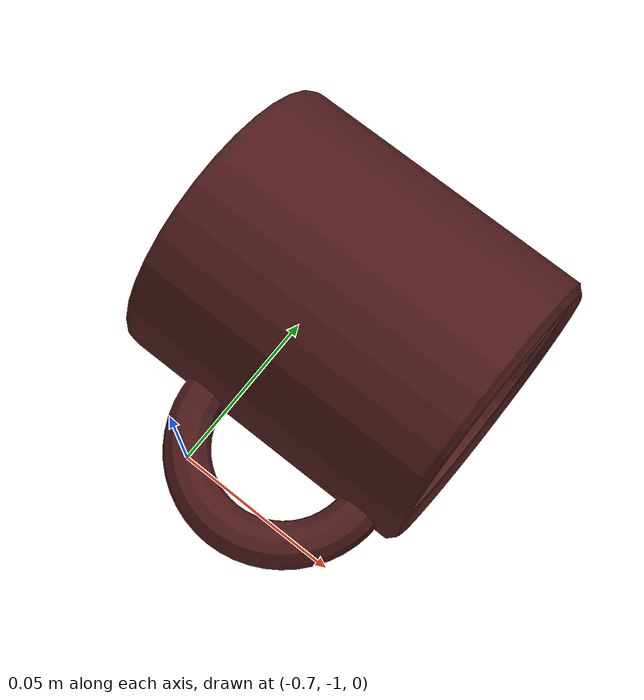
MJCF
<mujoco model="mesh_model">
        <asset>
            <mesh name="mug" file="mug.obj" scale="0.04 0.04 0.04"/>
        </asset>
        <worldbody>
            <body>
                <geom type="mesh" mesh="mug" contype="0" conaffinity="0" rgba="0.3 0.1 0.1 1" pos = "-0.68 -0.95 0.05" euler="0 90 0"/>
            </body>
        </worldbody>
    </mujoco>
